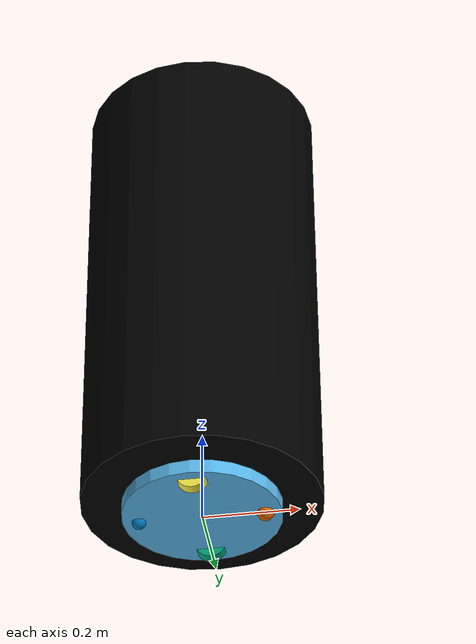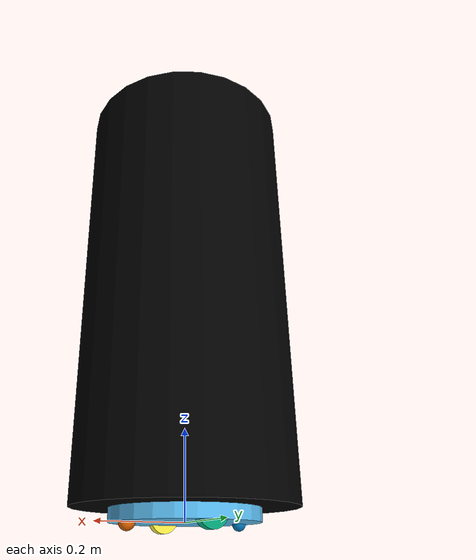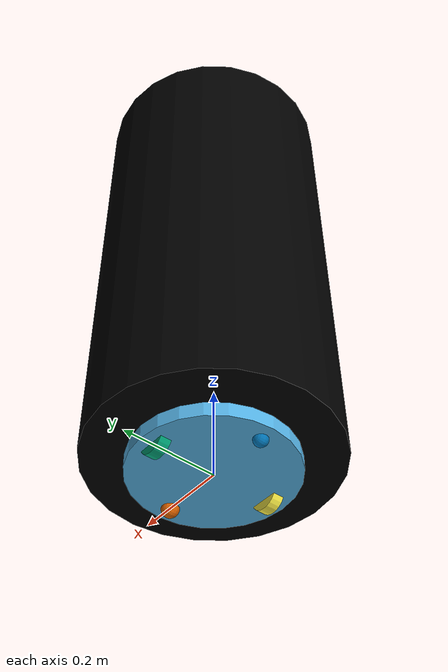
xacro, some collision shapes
<?xml version="1.0"?>

<robot name="obstacle" xmlns:xacro="http://ros.org/wiki/xacro">
	<xacro:property name="obs_width" value="0.25" />
	<xacro:property name="obs_hight" value="1.0" />
	<xacro:property name="obs_offset" value="0.53" />

  	<xacro:include filename="$(find turtlebot_description)/urdf/obstacle.gazebo" />
	<xacro:include filename="$(find turtlebot_description)/urdf/materials.xacro" />

	<link name="obstacle_link">
		<static>1</static>
		<inertial>
			<mass value="0.2" />
			<origin xyz="0 0 0.0" />
			<inertia ixx="0.01" ixy="0.0" ixz="0.0"
				iyy="0.01" iyz="0.0" izz="0.5" />
		</inertial>
		<collision name='collision'>
			<origin xyz="0 0 0" rpy="0 0 0" />
			<geometry>
				<cylinder radius="${obs_width}" length = "${obs_hight}"/>
			</geometry>
		</collision>

		<visual>
			<origin xyz="0 0 0" rpy="0 0 0" />
			<geometry>
				<cylinder radius="${obs_width}" length = "${obs_hight}"/>
			</geometry>
			<material name="black"/>
		</visual>
	</link>

	<joint name="obstacle_joint" type="fixed">
		<origin xyz="0 0 ${obs_offset}" rpy="0 0 0"/>
		<parent link="base_link"/>
		<child link="obstacle_link"/>
	</joint>

	<link name="base_link">
		<static>1</static>
		<inertial>
			<mass value="2" />
			<origin xyz="0 0 0.0" />
			<inertia ixx="0.01" ixy="0.0" ixz="0.0"
				iyy="0.01" iyz="0.0" izz="0.5" />
		</inertial>

		<visual>
		<origin xyz=" 0 0 0.0308" rpy="0 0 0" />
		<geometry>
			<mesh filename="package://turtlebot_description/meshes/create_body.dae"/>
		</geometry>
		</visual>

		<collision>
		<origin xyz="0.0 0.0 0.0308" rpy="0 0 0" />
		<geometry>
			<cylinder length="0.0611632" radius="0.16495"/>
		</geometry>
		</collision>
	</link>

	<link name="left_wheel_link">
		<inertial>
		<origin xyz="0 0 0"/>
		<mass value="0.01" />
		<inertia ixx="0.001" ixy="0.0" ixz="0.0"
			iyy="0.001" iyz="0.0" izz="0.001" />
		</inertial>

		<visual>
		<origin xyz="0 0 0" rpy="0 1.5707 1.5707" />
		<geometry>
			<cylinder radius="0.033" length = "0.023"/>
		</geometry>
		</visual>

		<collision>
		<origin xyz="0 0 0" rpy="0 1.5707 1.5707" />
		<geometry>
			<cylinder radius="0.033" length = "0.023"/>
		</geometry>
		</collision>
	</link>

	<joint name="left_wheel_joint" type="continuous">
		<origin xyz="0 0.13 0.015" rpy="0 0 0"/>
		<parent link="base_link"/>
		<child link="left_wheel_link"/>
		<axis xyz="0 1 0"/>
	</joint>

	<link name="right_wheel_link">
		<inertial>
		<origin xyz="0 0 0"/>
		<mass value="0.01" />
		<inertia ixx="0.001" ixy="0.0" ixz="0.0"
			iyy="0.001" iyz="0.0" izz="0.001" />
		</inertial>

		<visual>
		<origin xyz="0 0 0" rpy="0 1.5707 1.5707" />
		<geometry>
			<cylinder radius="0.033" length = "0.023"/>
		</geometry>
		</visual>

		<collision>
		<origin xyz="0 0 0" rpy="0 1.5707 1.5707" />
		<geometry>
			<cylinder radius="0.033" length = "0.023"/>
		</geometry>
		</collision>
	</link>

	<joint name="right_wheel_joint" type="continuous">
		<origin xyz="0 -0.13 0.015" rpy="0 0 0"/>
		<parent link="base_link"/>
		<child link="right_wheel_link"/>
		<axis xyz="0 1 0"/>
	</joint>

	<link name="rear_wheel_link">
		<inertial>
			<origin xyz="0 0 0"/>
			<mass value="0.001" />
			<inertia ixx="0.0001" ixy="0.0" ixz="0.0"
				iyy="0.0001" iyz="0.0" izz="0.0001" />
		</inertial>

		<visual>
			<origin xyz="0 0 0" rpy="0 1.5707 1.5707"/>
			<geometry>
				<sphere radius="0.015" />
			</geometry>
		</visual>

		<collision>
			<origin xyz="0 0 0" rpy="0 1.5707 1.5707" />
			<geometry>
				<sphere radius="0.015" />
			</geometry>
		</collision>
	</link>
	<!-- fixed because there's no transmission -->
	<joint name="rear_castor_joint" type="fixed">
		<origin xyz="-0.13 0 0.0" rpy="0 0 0"/>
		<parent link="base_link"/>
		<child link="rear_wheel_link"/>
		<axis xyz="0 1 0"/>
	</joint>

	<link name="front_wheel_link">
		<inertial>
			<origin xyz="0 0 0" />
			<mass value="0.01" />
			<inertia ixx="0.001" ixy="0.0" ixz="0.0"
				iyy="0.001" iyz="0.0" izz="0.001" />
		</inertial>

		<visual>
			<origin xyz="0 0 0" rpy="0 1.5707 1.5707"/>
			<geometry>
				<sphere radius="0.018" />
			</geometry>
		</visual>

		<collision>
			<origin xyz="0 0 0" rpy="0 1.5707 1.5707" />
			<geometry>
				<sphere radius="0.018" />
			</geometry>
		</collision>
	</link>

	<!-- fixed because there's no transmission -->
	<joint name="front_castor_joint" type="fixed">
		<origin xyz="0.13 0 0.0" rpy="0 0 0"/>
		<parent link="base_link"/>
		<child link="front_wheel_link"/>
		<axis xyz="0 1 0"/>
	</joint>

</robot>

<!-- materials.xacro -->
<robot>

  <material name="black">
    <color rgba="0.0 0.0 0.0 1.0"/>
  </material>

  <material name="blue">
    <color rgba="0.0 0.0 0.8 1.0"/>
  </material>

  <material name="green">
    <color rgba="0.0 0.8 0.0 1.0"/>
  </material>

  <material name="yellow">
    <color rgba="1 0.4 0 1"/>
  </material>

  <material name="grey">
    <color rgba="0.2 0.2 0.2 1.0"/>
  </material>

  <material name="orange">
    <color rgba="${255/255} ${108/255} ${10/255} 1.0"/>
  </material>

  <material name="brown">
    <color rgba="${222/255} ${207/255} ${195/255} 1.0"/>
  </material>

  <material name="red">
    <color rgba="0.8 0.0 0.0 1.0"/>
  </material>

  <material name="white">
    <color rgba="1.0 1.0 1.0 1.0"/>
  </material>

</robot>
